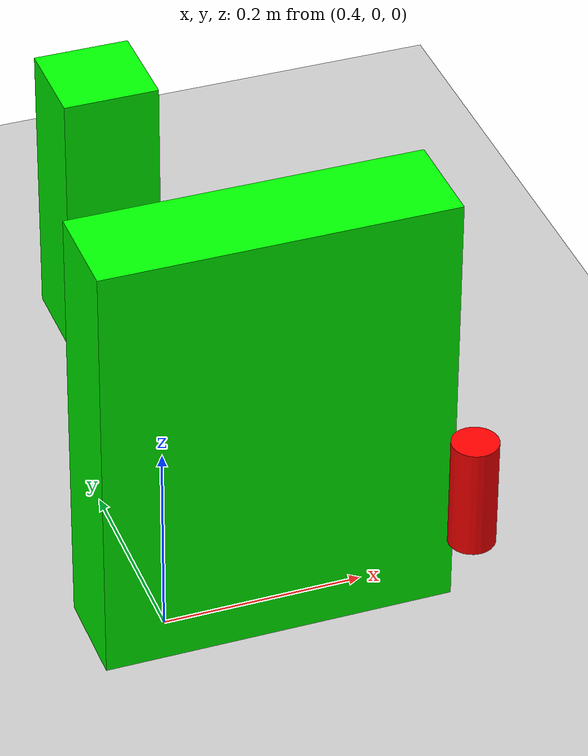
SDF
<?xml version="1.0" ?>
<sdf version="1.8">
    <world name="test_world">
        <light name="lighting" type="directional"/>
        <model name="ground_plane">
            <static>true</static>
            <pose>0 0 0 0 0 0</pose>
            <link name="link">
                <collision name="ground_collision">
                    <geometry>
                        <plane>
                            <normal>0 0 1</normal>
                            <size>100 100</size>
                        </plane>
                    </geometry>
                </collision>
                <visual name="ground_visual">
                    <geometry>
                        <plane>
                            <normal>0 0 1</normal>
                            <size>100 100</size>
                        </plane>
                    </geometry>
                    <material>
                        <ambient>0.8 0.8 0.8 1</ambient>
                        <diffuse>0.8 0.8 0.8 1</diffuse>
                        <specular>0.8 0.8 0.8 1</specular>
                    </material>
                </visual>
            </link>
        </model>

        <model name="wall">
            <pose>0.5 0.0 0.225 0 0 0</pose> <!-- position: x=0.5, y=0.0, z=0.225 -->
            <link name="wall_link">
              <!-- Visual representation -->
              <visual name="wall_visual">
                <geometry>
                  <box>
                    <size>0.35 0.1 0.45</size> <!-- Dimensions: x=0.35, y=0.1, z=0.45 -->
                  </box>
                </geometry>
                <material>
                  <ambient>0.0 1.0 0.0 1.0</ambient> <!-- Green color -->
                  <diffuse>0.0 1.0 0.0 1.0</diffuse> <!-- Green color -->
                  <specular>0.5 0.5 0.5 1.0</specular> <!-- Optional for shininess -->
                </material>
              </visual>

              <!-- Collision representation -->
              <collision name="wall_collision">
                <geometry>
                  <box>
                    <size>0.35 0.1 0.45</size>
                  </box>
                </geometry>
              </collision>
            </link>
          </model>

        <model name="cube">
            <pose>0.5 0.5 0.15 0 0 0</pose> <!-- position: x=0.5, y=0.5, z=0.15 -->
            <link name="cube_link">
              <!-- Visual representation -->
              <visual name="cube_visual">
                <geometry>
                  <box>
                    <size>0.1 0.1 0.3</size> <!-- Dimensions: x=0.1, y=0.1, z=0.3 -->
                  </box>
                </geometry>
                <material>
                  <ambient>0.0 1.0 0.0 1.0</ambient> <!-- Green color -->
                  <diffuse>0.0 1.0 0.0 1.0</diffuse> <!-- Green color -->
                  <specular>0.5 0.5 0.5 1.0</specular> <!-- Optional for shininess -->
                </material>
              </visual>

              <!-- Collision representation -->
              <collision name="cube_collision">
                <geometry>
                  <box>
                    <size>0.1 0.1 0.3</size>
                  </box>
               </geometry>
              </collision>
            </link>
          </model>

        <model name="object">
            <pose>0.5 -0.5 0.5 0 0 0</pose> <!-- position: x=0.5, y=-0.5, z=0.0 -->
            <link name="object_link">
              <!-- Visual representation -->
              <visual name="object_visual">
                <geometry>
                  <cylinder>
                    <radius>0.02</radius> <!-- radius from the dimensions array -->
                    <length>0.1</length>  <!-- height from the dimensions array -->
                  </cylinder>
                </geometry>
                <material>
                  <ambient>1.0 0.0 0.0 1.0</ambient> <!-- Optional: Define color -->
                  <diffuse>1.0 0.0 0.0 1.0</diffuse> <!-- Red color -->
                  <specular>0.5 0.5 0.5 1.0</specular> <!-- Optional for shininess -->
                </material>
              </visual>

              <!-- Collision representation -->
              <collision name="object_collision">
                <geometry>
                  <cylinder>
                    <radius>0.02</radius>
                    <length>0.1</length>
                  </cylinder>
                </geometry>
             </collision>
            </link>
          </model>

    </world>
</sdf>
